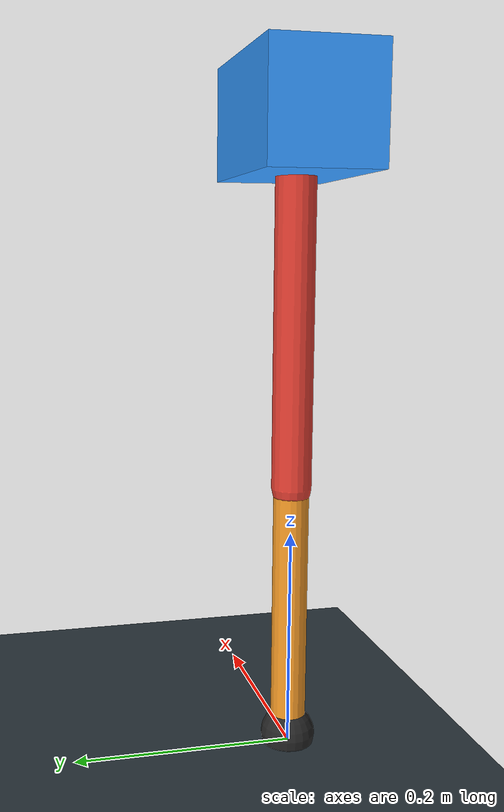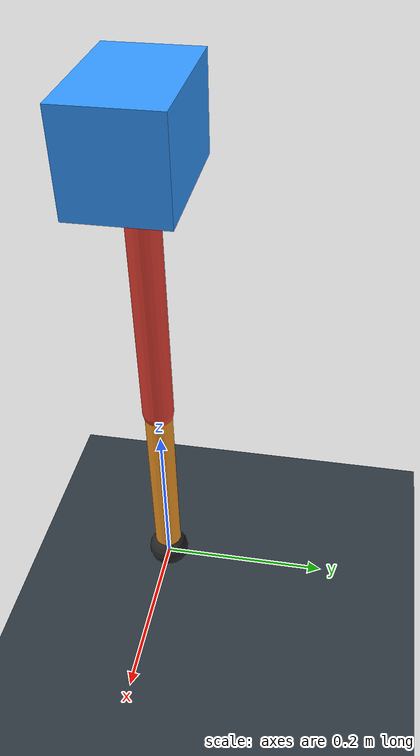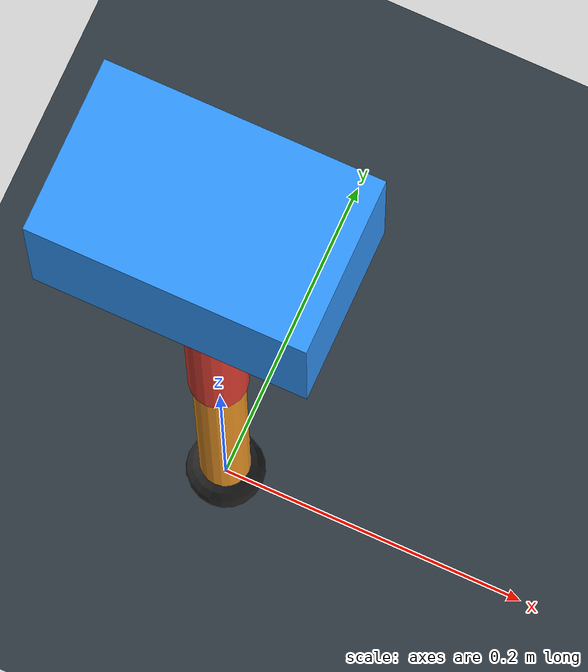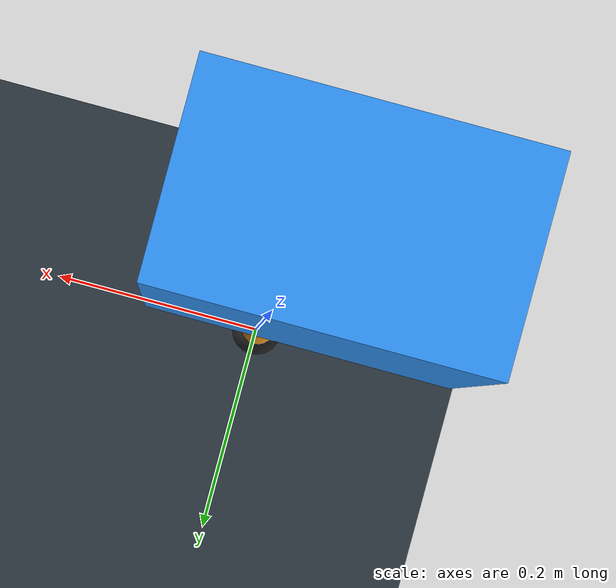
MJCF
<mujoco model="single_axis_two_bar">
  <compiler angle="radian" inertiafromgeom="true"/>
  <option timestep="0.001" integrator="implicitfast" gravity="0 0 -9.81"/>
  <default>
    <joint damping="0.08"/>
    <geom friction="1.2 0.01 0.0001" condim="3"/>
  </default>
  <worldbody>
    <geom name="floor" type="plane" size="5 5 0.1" rgba="0.18 0.22 0.25 1"/>
    <body name="carriage" pos="0 0 0.5667064537943499">
      <joint name="pole_slide" type="slide" axis="0 0 1"/>
      <geom name="payload" type="box" size="0.08 0.05 0.05" mass="2.397963011523335" rgba="0.2 0.6 1 1"/>
      <body name="thigh" pos="0 0 0">
        <joint name="hip" type="hinge" axis="0 1 0"/>
        <geom name="thigh_link" type="capsule" fromto="0 0 0 0 0 -0.32421941449918135" size="0.018" mass="0.23101061701224299" rgba="0.9 0.25 0.2 1"/>
        <body name="shank" pos="0 0 -0.32421941449918135">
          <joint name="knee" type="hinge" axis="0 1 0"/>
          <geom name="shank_link" type="capsule" fromto="0 0 0 0 0 -0.23424084714447835" size="0.016" mass="0.16689969881014965" rgba="0.95 0.6 0.15 1"/>
          <geom name="foot" type="sphere" pos="0 0 -0.23424084714447835" size="0.025" mass="0.03" rgba="0.15 0.15 0.15 1"/>
          <site name="toe" pos="0 0 -0.23424084714447835" size="0.008"/>
        </body>
      </body>
    </body>
  </worldbody>
  <actuator>
    <motor name="hip_motor" joint="hip" ctrlrange="-30.98145050437609 30.98145050437609"/>
    <motor name="knee_motor" joint="knee" ctrlrange="-104.97242210229048 104.97242210229048"/>
  </actuator>
</mujoco>
